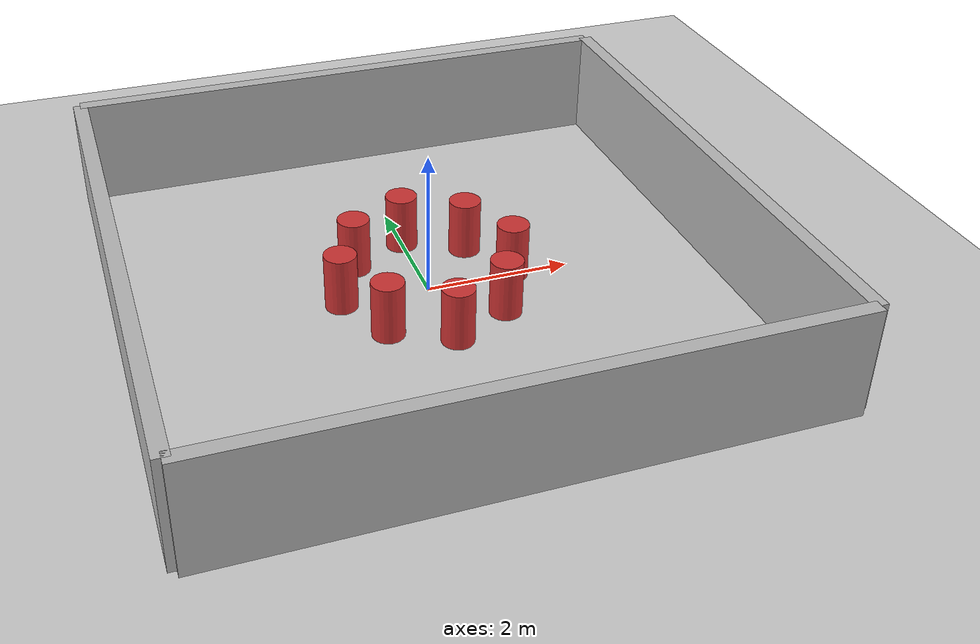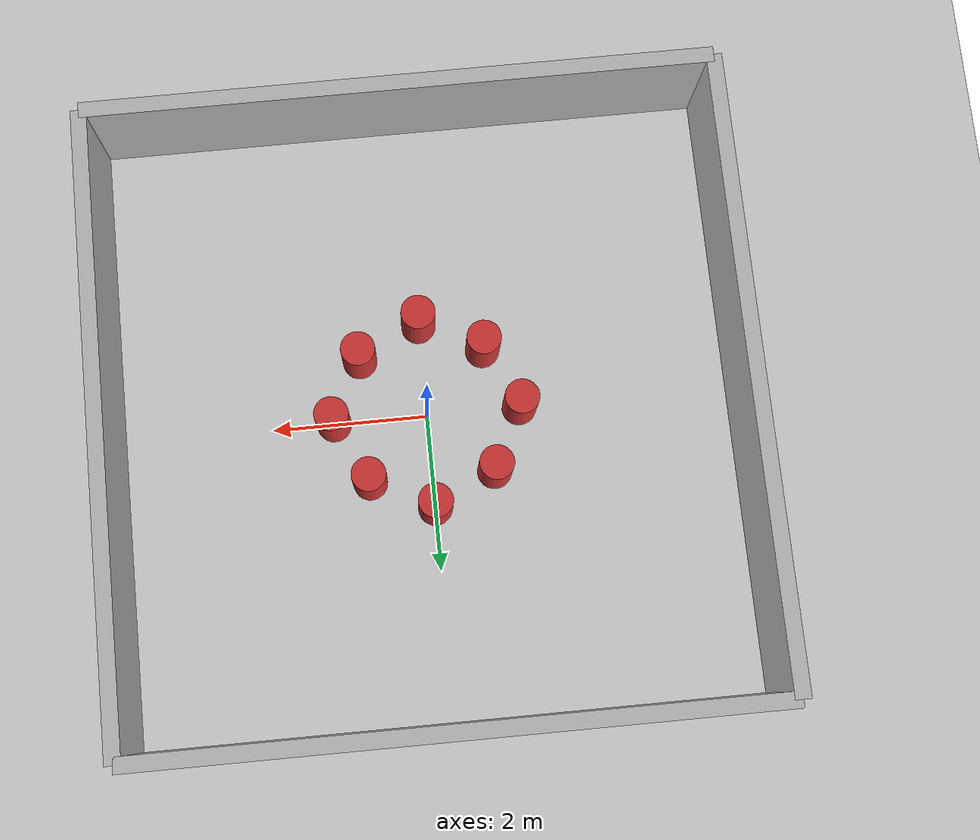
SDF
<?xml version="1.0" ?>
<sdf version="1.6">
<world name="warehouse_dynamic">
  <plugin name='gazebo_ros_state' filename='libgazebo_ros_state.so'>
    <ros>
      <argument>model_states:=model_states_demo</argument>
    </ros>
    <update_rate>1.0</update_rate>
  </plugin>

  <include>
    <uri>model://sun</uri>
  </include>
  <include>
    <uri>model://ground_plane</uri>
  </include>

  <!-- Boundary walls: 8m x 8m square arena -->
  <model name="b_north">
    <static>true</static>
    <pose>0.0 4.0 0.75 0 0 0</pose>
    <link name="link">
      <collision name="collision"><geometry><box><size>8.0 0.2 1.5</size></box></geometry></collision>
      <visual name="visual"><geometry><box><size>8.0 0.2 1.5</size></box></geometry></visual>
    </link>
  </model>

  <model name="b_south">
    <static>true</static>
    <pose>0.0 -4.0 0.75 0 0 0</pose>
    <link name="link">
      <collision name="collision"><geometry><box><size>8.0 0.2 1.5</size></box></geometry></collision>
      <visual name="visual"><geometry><box><size>8.0 0.2 1.5</size></box></geometry></visual>
    </link>
  </model>

  <model name="b_east">
    <static>true</static>
    <pose>4.0 0.0 0.75 0 0 0</pose>
    <link name="link">
      <collision name="collision"><geometry><box><size>0.2 8.0 1.5</size></box></geometry></collision>
      <visual name="visual"><geometry><box><size>0.2 8.0 1.5</size></box></geometry></visual>
    </link>
  </model>

  <model name="b_west">
    <static>true</static>
    <pose>-4.0 0.0 0.75 0 0 0</pose>
    <link name="link">
      <collision name="collision"><geometry><box><size>0.2 8.0 1.5</size></box></geometry></collision>
      <visual name="visual"><geometry><box><size>0.2 8.0 1.5</size></box></geometry></visual>
    </link>
  </model>

  <!-- Dynamic obstacles (movable, positioned inside arena) -->
  <model name="dyn_obs_0">
    <static>false</static>
    <pose>0.8 0.8 0.4 0 0 0</pose>
    <link name="link">
      <inertial><mass>5.0</mass><inertia><ixx>0.1</ixx><iyy>0.1</iyy><izz>0.1</izz></inertia></inertial>
      <collision name="collision"><geometry><cylinder><radius>0.22</radius><length>0.8</length></cylinder></geometry></collision>
      <visual name="visual"><geometry><cylinder><radius>0.22</radius><length>0.8</length></cylinder></geometry>
        <material><ambient>0.8 0.2 0.2 1</ambient><diffuse>0.8 0.2 0.2 1</diffuse></material>
      </visual>
    </link>
  </model>

  <model name="dyn_obs_1">
    <static>false</static>
    <pose>-0.8 0.8 0.4 0 0 0</pose>
    <link name="link">
      <inertial><mass>5.0</mass><inertia><ixx>0.1</ixx><iyy>0.1</iyy><izz>0.1</izz></inertia></inertial>
      <collision name="collision"><geometry><cylinder><radius>0.22</radius><length>0.8</length></cylinder></geometry></collision>
      <visual name="visual"><geometry><cylinder><radius>0.22</radius><length>0.8</length></cylinder></geometry>
        <material><ambient>0.8 0.2 0.2 1</ambient><diffuse>0.8 0.2 0.2 1</diffuse></material>
      </visual>
    </link>
  </model>

  <model name="dyn_obs_2">
    <static>false</static>
    <pose>0.8 -0.8 0.4 0 0 0</pose>
    <link name="link">
      <inertial><mass>5.0</mass><inertia><ixx>0.1</ixx><iyy>0.1</iyy><izz>0.1</izz></inertia></inertial>
      <collision name="collision"><geometry><cylinder><radius>0.22</radius><length>0.8</length></cylinder></geometry></collision>
      <visual name="visual"><geometry><cylinder><radius>0.22</radius><length>0.8</length></cylinder></geometry>
        <material><ambient>0.8 0.2 0.2 1</ambient><diffuse>0.8 0.2 0.2 1</diffuse></material>
      </visual>
    </link>
  </model>

  <model name="dyn_obs_3">
    <static>false</static>
    <pose>-0.8 -0.8 0.4 0 0 0</pose>
    <link name="link">
      <inertial><mass>5.0</mass><inertia><ixx>0.1</ixx><iyy>0.1</iyy><izz>0.1</izz></inertia></inertial>
      <collision name="collision"><geometry><cylinder><radius>0.22</radius><length>0.8</length></cylinder></geometry></collision>
      <visual name="visual"><geometry><cylinder><radius>0.22</radius><length>0.8</length></cylinder></geometry>
        <material><ambient>0.8 0.2 0.2 1</ambient><diffuse>0.8 0.2 0.2 1</diffuse></material>
      </visual>
    </link>
  </model>

  <model name="dyn_obs_4">
    <static>false</static>
    <pose>1.2 0.0 0.4 0 0 0</pose>
    <link name="link">
      <inertial><mass>5.0</mass><inertia><ixx>0.1</ixx><iyy>0.1</iyy><izz>0.1</izz></inertia></inertial>
      <collision name="collision"><geometry><cylinder><radius>0.22</radius><length>0.8</length></cylinder></geometry></collision>
      <visual name="visual"><geometry><cylinder><radius>0.22</radius><length>0.8</length></cylinder></geometry>
        <material><ambient>0.8 0.2 0.2 1</ambient><diffuse>0.8 0.2 0.2 1</diffuse></material>
      </visual>
    </link>
  </model>

  <model name="dyn_obs_5">
    <static>false</static>
    <pose>0.0 1.2 0.4 0 0 0</pose>
    <link name="link">
      <inertial><mass>5.0</mass><inertia><ixx>0.1</ixx><iyy>0.1</iyy><izz>0.1</izz></inertia></inertial>
      <collision name="collision"><geometry><cylinder><radius>0.22</radius><length>0.8</length></cylinder></geometry></collision>
      <visual name="visual"><geometry><cylinder><radius>0.22</radius><length>0.8</length></cylinder></geometry>
        <material><ambient>0.8 0.2 0.2 1</ambient><diffuse>0.8 0.2 0.2 1</diffuse></material>
      </visual>
    </link>
  </model>

  <model name="dyn_obs_6">
    <static>false</static>
    <pose>0.0 -1.2 0.4 0 0 0</pose>
    <link name="link">
      <inertial><mass>5.0</mass><inertia><ixx>0.1</ixx><iyy>0.1</iyy><izz>0.1</izz></inertia></inertial>
      <collision name="collision"><geometry><cylinder><radius>0.22</radius><length>0.8</length></cylinder></geometry></collision>
      <visual name="visual"><geometry><cylinder><radius>0.22</radius><length>0.8</length></cylinder></geometry>
        <material><ambient>0.8 0.2 0.2 1</ambient><diffuse>0.8 0.2 0.2 1</diffuse></material>
      </visual>
    </link>
  </model>

  <model name="dyn_obs_7">
    <static>false</static>
    <pose>-1.2 0.0 0.4 0 0 0</pose>
    <link name="link">
      <inertial><mass>5.0</mass><inertia><ixx>0.1</ixx><iyy>0.1</iyy><izz>0.1</izz></inertia></inertial>
      <collision name="collision"><geometry><cylinder><radius>0.22</radius><length>0.8</length></cylinder></geometry></collision>
      <visual name="visual"><geometry><cylinder><radius>0.22</radius><length>0.8</length></cylinder></geometry>
        <material><ambient>0.8 0.2 0.2 1</ambient><diffuse>0.8 0.2 0.2 1</diffuse></material>
      </visual>
    </link>
  </model>

</world>
</sdf>
